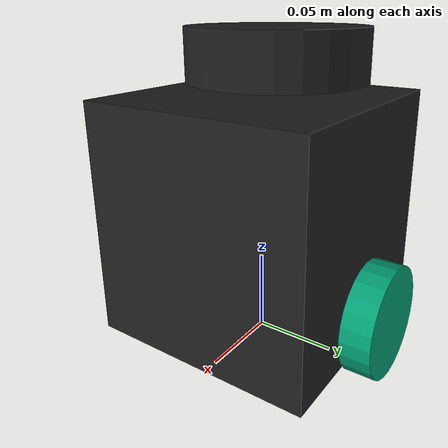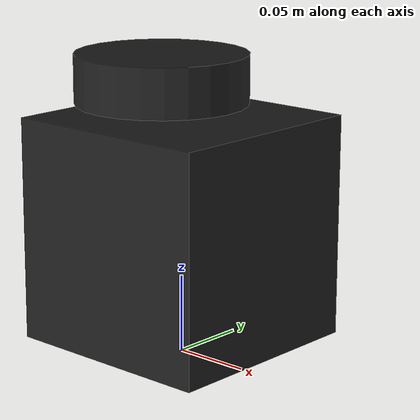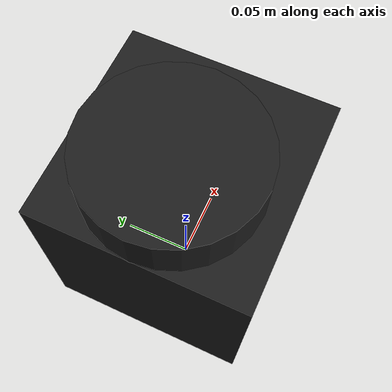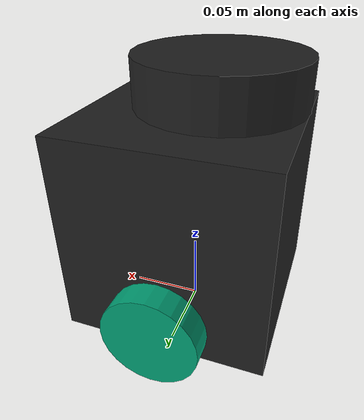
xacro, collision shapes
<?xml version="1.0" ?>
<robot name="turtlebot3_burger" xmlns:xacro="http://ros.org/wiki/xacro">
  <xacro:include filename="$(find omniturtle_description)/urdf/common_properties.xacro"/>
  <xacro:include filename="$(find omniturtle_description)/urdf/turtlebot3_burger.gazebo.xacro"/>

  <!-- Properties block -->
  <xacro:property name="PI" value="3.1415926535897931"/>

  <xacro:property name="b_diam" value="0.13755" />    <!-- base diameter -->
  <xacro:property name="b_height" value="0.14413" />  <!-- base height -->

  <xacro:property name="w_mass" value="0.1" />      <!-- wheel mass -->
  <xacro:property name="w_diam" value="0.034" />    <!-- wheel diameter -->
  <xacro:property name="w_width" value="0.018" />   <!-- wheel width -->

  <!-- Links & Joints block -->
  <link name="base_footprint"/>

  <joint name="base_joint" type="fixed">
    <parent link="base_footprint"/>
    <child link="base_link"/>
    <origin xyz="0.0 0.0 0.010" rpy="0 0 0"/>
  </joint>

  <link name="base_link">
    <visual>
      <origin xyz="0.0 0 0.0" rpy="0 0 0"/>
      <geometry>
        <mesh filename="package://omniturtle_description/meshes/bases/burger_base_clear.stl" scale="0.001 0.001 0.001"/>
      </geometry>
      <material name="light_black"/>
    </visual>

    <collision>
      <origin xyz="0.0 0.0 ${b_height/2}" rpy="0 0 0"/>
      <geometry>
        <box size="0.140 0.140 0.143"/>
      </geometry>
    </collision>

    <inertial>
      <origin xyz="0 0 0" rpy="0 0 0"/>
      <mass value="8.2573504e-01"/>
      <inertia ixx="2.2124416e-03" ixy="-1.2294101e-05" ixz="3.4938785e-05"
               iyy="2.1193702e-03" iyz="-5.0120904e-06"
               izz="2.0064271e-03" />
    </inertial>
  </link>

  <!-- Wheel macro -->
  <xacro:macro name="wheel" params="suffix right front">

    <!-- Wheel link -->
    <link name="wheel_${suffix}">
      <visual>
        <origin xyz="0 0 0" rpy="0 0 0" />
	<geometry>
	  <cylinder radius="${w_diam/2}" length="${w_width}"/>
	</geometry>
        <material name="black">
          <color rgba="0 0 0 1"/>
        </material>
      </visual>

      <collision>
        <origin xyz="0 0 0" rpy="0 0 0"/>
	<geometry>
	  <cylinder radius="${w_diam/2}" length="${w_width}"/>
	</geometry>
      </collision>

      <inertial>
        <origin xyz="0 0 0" rpy="0 0 0"/>
        <mass value="${w_mass}"/>
        <inertia
	    ixx="1.0" ixy="0.0" ixz="0.0"
	    iyy="1.0" iyz="0.0"
	    izz="1.0"/>
      </inertial>
    </link>

    <joint name="wheel_${suffix}_joint" type="continuous">
      <axis xyz="0 0 1"/>
      <parent link="base_link"/>
      <child link="wheel_${suffix}"/>
      <origin xyz="${(0.02 + w_diam/2) * front} ${0.08 * -right} 0" rpy="${-pi/2} 0 0"/>
    </joint>

  </xacro:macro>

  <!-- Add wheels to Base -->
  <!-- xacro:wheel suffix="rf" right="1"   front="1"/ -->
  <!-- xacro:wheel suffix="lf" right="-1"   front="1"/ -->
  <!-- xacro:wheel suffix="rb" right="1"   front="-1"/ -->
  <!-- xacro:wheel suffix="lb" right="-1"   front="-1"/ -->

  <xacro:property name="suffix" value="rf" />
  <xacro:property name="right" value="1" />
  <xacro:property name="front" value="1" />

  <joint name="wheel_left_joint" type="continuous">
    <parent link="base_link"/>
    <child link="wheel_left_link"/>
    <origin xyz="0.0 0.08 0.023" rpy="-1.57 0 0"/>
    <axis xyz="0 0 1"/>
  </joint>

  <link name="wheel_left_link">
    <visual>
      <origin xyz="0 0 0" rpy="1.57 0 0"/>
      <geometry>
        <mesh filename="package://turtlebot3_description/meshes/wheels/left_tire.stl" scale="0.001 0.001 0.001"/>
      </geometry>
      <material name="dark"/>
    </visual>

    <collision>
      <origin xyz="0 0 0" rpy="0 0 0"/>
      <geometry>
        <cylinder length="0.018" radius="0.033"/>
      </geometry>
    </collision>

    <inertial>
      <origin xyz="0 0 0" />
      <mass value="2.8498940e-02" />
      <inertia ixx="1.1175580e-05" ixy="-4.2369783e-11" ixz="-5.9381719e-09"
               iyy="1.1192413e-05" iyz="-1.4400107e-11"
               izz="2.0712558e-05" />
      </inertial>
  </link>

  <joint name="imu_joint" type="fixed">
    <parent link="base_link"/>
    <child link="imu_link"/>
    <origin xyz="-0.032 0 0.068" rpy="0 0 0"/>
  </joint>

  <link name="imu_link"/>

  <joint name="scan_joint" type="fixed">
    <parent link="base_link"/>
    <child link="base_scan"/>
    <origin xyz="-0.032 0 0.172" rpy="0 0 0"/>
  </joint>

  <link name="base_scan">
    <visual>
      <origin xyz="0 0 0.0" rpy="0 0 0"/>
      <geometry>
        <mesh filename="package://turtlebot3_description/meshes/sensors/lds.stl" scale="0.001 0.001 0.001"/>
      </geometry>
      <material name="dark"/>
    </visual>

    <collision>
      <origin xyz="0.015 0 -0.0065" rpy="0 0 0"/>
      <geometry>
        <cylinder length="0.0315" radius="0.055"/>
      </geometry>
    </collision>

    <inertial>
      <mass value="0.114" />
      <origin xyz="0 0 0" />
      <inertia ixx="0.001" ixy="0.0" ixz="0.0"
               iyy="0.001" iyz="0.0"
               izz="0.001" />
    </inertial>
  </link>

</robot>
